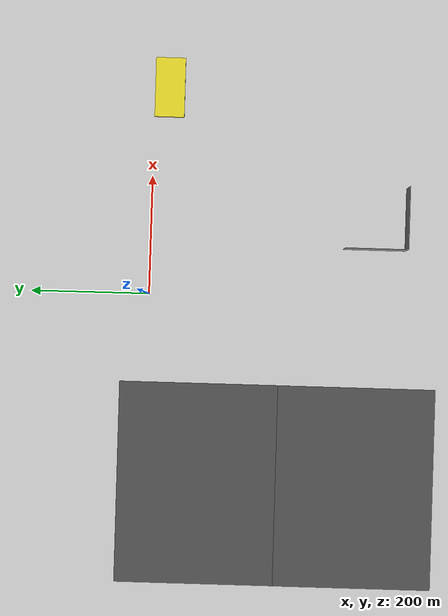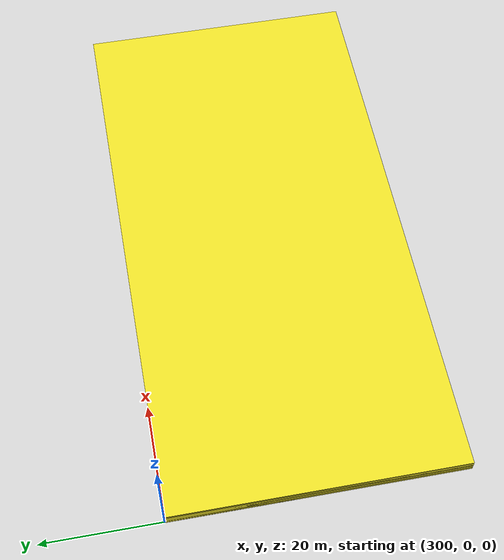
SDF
<sdf version="1.7">
 <world name="myworld2">
  <light name="sun" type="directional">
   <pose>0 0 10 0 -0 0</pose>
   <diffuse>0.8 0.8 0.8 1</diffuse>
   <specular>0.2 0.2 0.2 1</specular>
   <attenuation>
    <range>1000</range>
    <constant>0.9</constant>
    <linear>0.01</linear>
    <quadratic>0.001</quadratic>
   </attenuation>
   <direction>-0.5 0.1 -0.9</direction>
   <spot><inner_angle>0</inner_angle><outer_angle>0</outer_angle><falloff>0</falloff></spot>
  </light>
  <model name="ground_plane">
   <static>1</static>
   <link name="link">
    <collision name="collision">
     <geometry><plane><normal>0 0 1</normal><size>1000 1000</size></plane></geometry>
     <surface>
      <contact><collide_bitmask>65535</collide_bitmask></contact>
      <friction><ode><mu>100</mu><mu2>50</mu2></ode></friction>
     </surface>
    </collision>
    <visual name="visual">
     <cast_shadows>0</cast_shadows>
     <geometry><plane><normal>0 0 1</normal><size>1000 1000</size></plane></geometry>
     <material>
      <script><uri>file://media/materials/scripts/gazebo.material</uri><name>Gazebo/Grey</name></script>
     </material>
    </visual>
   </link>
  </model>
  <gravity>0 0 -9.8</gravity>
  <magnetic_field>6e-06 2.3e-05 -4.2e-05</magnetic_field>
  <atmosphere type="adiabatic"/>
  <physics type="ode">
   <max_step_size>0.001</max_step_size>
   <real_time_factor>1</real_time_factor>
   <real_time_update_rate>1000</real_time_update_rate>
  </physics>
  <scene><ambient>0.4 0.4 0.4 1</ambient><background>0.7 0.7 0.7 1</background><shadows>1</shadows></scene>
  <audio><device>default</device></audio>
  <spherical_coordinates>
   <surface_model>EARTH_WGS84</surface_model>
   <latitude_deg>0</latitude_deg>
   <longitude_deg>0</longitude_deg>
   <elevation>0</elevation>
   <heading_deg>0</heading_deg>
  </spherical_coordinates>
  <model name="curbs">
   <pose>350 -25 0.25 0 -0 0</pose>
   <static>1</static>
   <link name="c1">
    <collision name="collision"><geometry><box><size>100 50 0.5</size></box></geometry></collision>
    <visual name="visual">
     <geometry><box><size>100 50 0.5</size></box></geometry>
     <material>
      <script><name>Gazebo/Yellow</name><uri>file://media/materials/scripts/gazebo.material</uri></script>
     </material>
    </visual>
   </link>
   <link name="c2">
    <collision name="collision"><geometry><box><size>100 50 1</size></box></geometry></collision>
    <visual name="visual">
     <geometry><box><size>100 50 1</size></box></geometry>
     <material>
      <script><name>Gazebo/Yellow</name><uri>file://media/materials/scripts/gazebo.material</uri></script>
     </material>
    </visual>
   </link>
   <link name="c3">
    <collision name="collision"><geometry><box><size>100 50 1.5</size></box></geometry></collision>
    <visual name="visual">
     <geometry><box><size>100 50 1.5</size></box></geometry>
     <material>
      <script><name>Gazebo/Yellow</name><uri>file://media/materials/scripts/gazebo.material</uri></script>
     </material>
    </visual>
   </link>
   <link name="c4">
    <collision name="collision"><geometry><box><size>100 50 2</size></box></geometry></collision>
    <visual name="visual">
     <geometry><box><size>100 50 2</size></box></geometry>
     <material>
      <script><name>Gazebo/Yellow</name><uri>file://media/materials/scripts/gazebo.material</uri></script>
     </material>
    </visual>
   </link>
   <link name="c5">
    <collision name="collision"><geometry><box><size>100 50 2.5</size></box></geometry></collision>
    <visual name="visual">
     <geometry><box><size>100 50 2.5</size></box></geometry>
     <material>
      <script><name>Gazebo/Yellow</name><uri>file://media/materials/scripts/gazebo.material</uri></script>
     </material>
    </visual>
   </link>
   <link name="c6">
    <collision name="collision"><geometry><box><size>100 50 3</size></box></geometry></collision>
    <visual name="visual">
     <geometry><box><size>100 50 3</size></box></geometry>
     <material>
      <script><name>Gazebo/Yellow</name><uri>file://media/materials/scripts/gazebo.material</uri></script>
     </material>
    </visual>
   </link>
   <link name="c7">
    <collision name="collision"><geometry><box><size>100 50 3.5</size></box></geometry></collision>
    <visual name="visual">
     <geometry><box><size>100 50 3.5</size></box></geometry>
     <material>
      <script><name>Gazebo/Yellow</name><uri>file://media/materials/scripts/gazebo.material</uri></script>
     </material>
    </visual>
   </link>
   <link name="c8">
    <collision name="collision"><geometry><box><size>100 50 4</size></box></geometry></collision>
    <visual name="visual">
     <geometry><box><size>100 50 4</size></box></geometry>
     <material>
      <script><name>Gazebo/Yellow</name><uri>file://media/materials/scripts/gazebo.material</uri></script>
     </material>
    </visual>
   </link>
  </model>
  <model name="asphalt_plane_clone">
   <static>1</static>
   <link name="link">
    <collision name="collision"><geometry><box><size>339.368 268.118 0.1</size></box></geometry></collision>
    <visual name="visual">
     <cast_shadows>0</cast_shadows>
     <geometry><box><size>339.368 268.118 0.1</size></box></geometry>
     <material>
      <script>
       <uri>model://asphalt_plane/materials/scripts</uri>
       <uri>model://asphalt_plane/materials/textures</uri>
       <name>vrc/asphalt</name>
      </script>
     </material>
    </visual>
   </link>
   <pose>-318.035 -87.486 0 0 -0 0</pose>
  </model>
  <model name="asphalt_plane_clone_clone">
   <static>1</static>
   <link name="link">
    <collision name="collision"><geometry><box><size>339.368 268.118 0.1</size></box></geometry></collision>
    <visual name="visual">
     <cast_shadows>0</cast_shadows>
     <geometry><box><size>339.368 268.118 0.1</size></box></geometry>
     <material>
      <script>
       <uri>model://asphalt_plane/materials/scripts</uri>
       <uri>model://asphalt_plane/materials/textures</uri>
       <name>vrc/asphalt</name>
      </script>
     </material>
    </visual>
   </link>
   <pose>-318.188 -353.895 0 0 -0 0</pose>
  </model>
  <model name="unit_box">
   <static>1</static>
   <pose>138 -430 12 0 -0 0</pose>
   <link name="link">
    <inertial>
     <mass>1</mass>
     <inertia>
      <ixx>0.166667</ixx>
      <ixy>0</ixy>
      <ixz>0</ixz>
      <iyy>0.166667</iyy>
      <iyz>0</iyz>
      <izz>0.166667</izz>
     </inertia>
    </inertial>
    <collision name="collision"><geometry><box><size>104.557 1 27.9969</size></box></geometry></collision>
    <visual name="visual">
     <geometry><box><size>104.557 1 27.9969</size></box></geometry>
     <material>
      <script><name>Gazebo/Grey</name><uri>file://media/materials/scripts/gazebo.material</uri></script>
     </material>
    </visual>
   </link>
  </model>
  <model name="unit_box_clone">
   <static>1</static>
   <pose>85.2035 -377.904 12 0 -0 1.5708</pose>
   <link name="link">
    <inertial>
     <mass>1</mass>
     <inertia>
      <ixx>0.166667</ixx>
      <ixy>0</ixy>
      <ixz>0</ixz>
      <iyy>0.166667</iyy>
      <iyz>0</iyz>
      <izz>0.166667</izz>
     </inertia>
    </inertial>
    <collision name="collision"><geometry><box><size>104.557 1 27.9969</size></box></geometry></collision>
    <visual name="visual">
     <geometry><box><size>104.557 1 27.9969</size></box></geometry>
     <material>
      <script><name>Gazebo/Grey</name><uri>file://media/materials/scripts/gazebo.material</uri></script>
     </material>
    </visual>
   </link>
  </model>
 </world>
</sdf>
